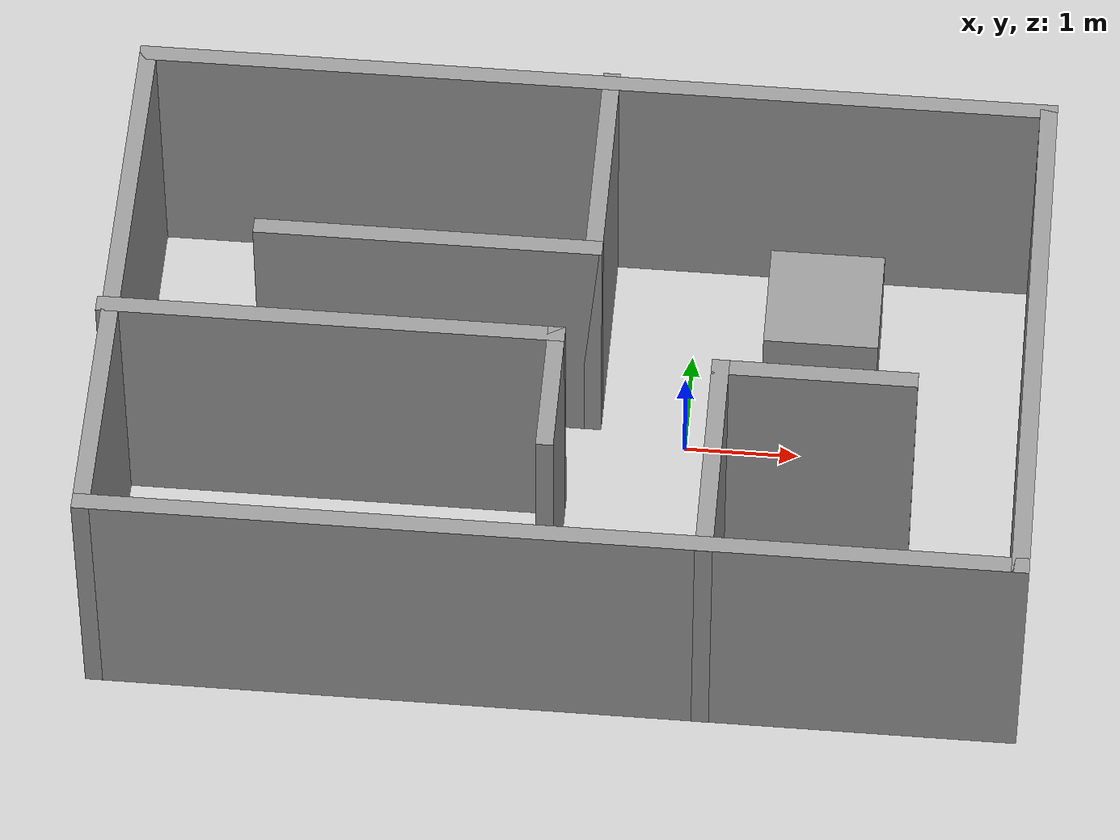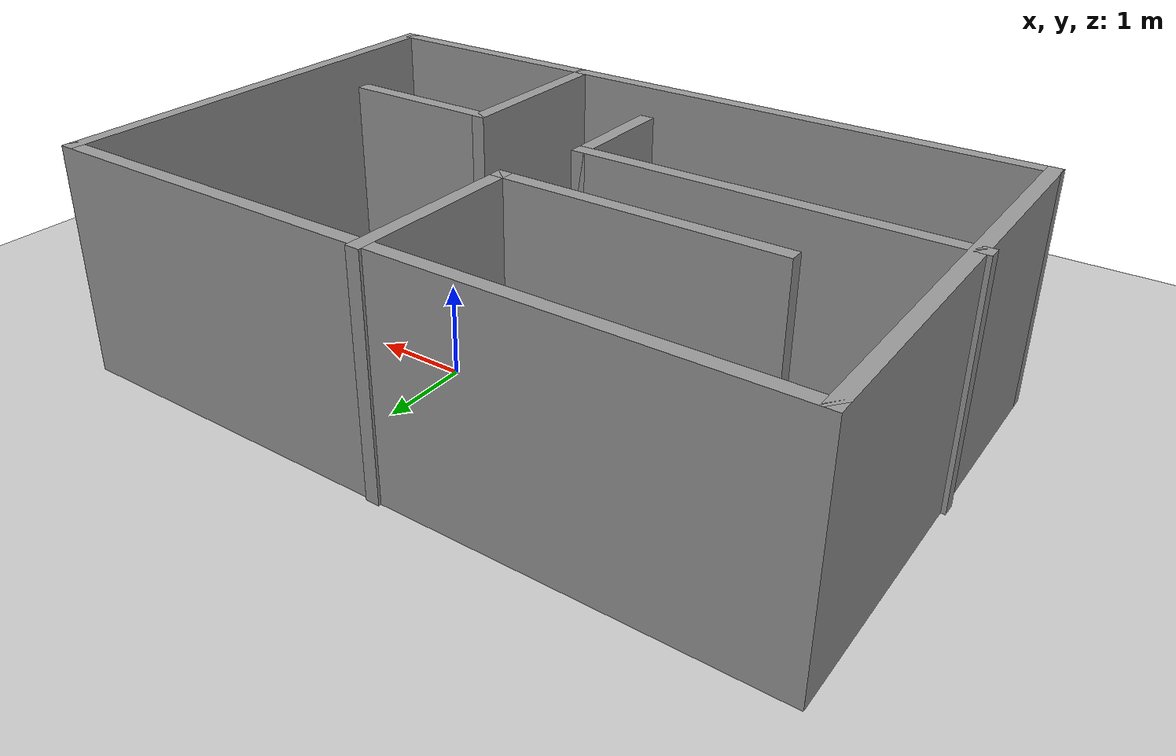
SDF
<sdf version="1.7">
 <world name="default">
  <light name="sun" type="directional">
   <pose>0 0 10 0 -0 0</pose>
   <diffuse>0.8 0.8 0.8 1</diffuse>
   <specular>0.2 0.2 0.2 1</specular>
   <attenuation>
    <range>1000</range>
    <constant>0.9</constant>
    <linear>0.01</linear>
    <quadratic>0.001</quadratic>
   </attenuation>
   <direction>-0.5 0.1 -0.9</direction>
   <spot><inner_angle>0</inner_angle><outer_angle>0</outer_angle><falloff>0</falloff></spot>
  </light>
  <model name="ground_plane">
   <static>1</static>
   <link name="link">
    <collision name="collision">
     <geometry><plane><normal>0 0 1</normal><size>100 100</size></plane></geometry>
     <surface><friction><ode><mu>100</mu><mu2>50</mu2></ode></friction></surface>
    </collision>
    <visual name="visual">
     <cast_shadows>0</cast_shadows>
     <geometry><plane><normal>0 0 1</normal><size>100 100</size></plane></geometry>
     <material>
      <script><uri>file://media/materials/scripts/gazebo.material</uri><name>Gazebo/Grey</name></script>
     </material>
    </visual>
   </link>
  </model>
  <gravity>0 0 -9.8</gravity>
  <magnetic_field>6e-06 2.3e-05 -4.2e-05</magnetic_field>
  <atmosphere type="adiabatic"/>
  <physics type="ode">
   <max_step_size>0.001</max_step_size>
   <real_time_factor>1</real_time_factor>
   <real_time_update_rate>1000</real_time_update_rate>
  </physics>
  <scene><ambient>0.4 0.4 0.4 1</ambient><background>0.7 0.7 0.7 1</background><shadows>1</shadows></scene>
  <audio><device>default</device></audio>
  <spherical_coordinates>
   <surface_model>EARTH_WGS84</surface_model>
   <latitude_deg>0</latitude_deg>
   <longitude_deg>0</longitude_deg>
   <elevation>0</elevation>
   <heading_deg>0</heading_deg>
  </spherical_coordinates>
  <model name="room">
   <pose>-0.966963 -0.366901 0 0 -0 0</pose>
   <link name="Wall_10">
    <collision name="Wall_10_Collision">
     <geometry><box><size>5 0.15 2.5</size></box></geometry>
     <pose>0 0 1.25 0 -0 0</pose>
    </collision>
    <visual name="Wall_10_Visual">
     <pose>0 0 1.25 0 -0 0</pose>
     <geometry><box><size>5 0.15 2.5</size></box></geometry>
     <material>
      <script><uri>file://media/materials/scripts/gazebo.material</uri><name>Gazebo/Grey</name></script>
      <ambient>1 1 1 1</ambient>
     </material>
     <meta><layer>0</layer></meta>
    </visual>
    <pose>3.94781 -0.014413 0 0 -0 -1.5708</pose>
   </link>
   <link name="Wall_11">
    <collision name="Wall_11_Collision">
     <geometry><box><size>8 0.15 2.5</size></box></geometry>
     <pose>0 0 1.25 0 -0 0</pose>
    </collision>
    <visual name="Wall_11_Visual">
     <pose>0 0 1.25 0 -0 0</pose>
     <geometry><box><size>8 0.15 2.5</size></box></geometry>
     <material>
      <script><uri>file://media/materials/scripts/gazebo.material</uri><name>Gazebo/Grey</name></script>
      <ambient>1 1 1 1</ambient>
     </material>
     <meta><layer>0</layer></meta>
    </visual>
    <pose>0.022813 -2.43941 0 0 -0 3.14159</pose>
   </link>
   <link name="Wall_12">
    <collision name="Wall_12_Collision">
     <geometry><box><size>5 0.15 2.5</size></box></geometry>
     <pose>0 0 1.25 0 -0 0</pose>
    </collision>
    <visual name="Wall_12_Visual">
     <pose>0 0 1.25 0 -0 0</pose>
     <geometry><box><size>5 0.15 2.5</size></box></geometry>
     <material>
      <script><uri>file://media/materials/scripts/gazebo.material</uri><name>Gazebo/Grey</name></script>
      <ambient>1 1 1 1</ambient>
     </material>
     <meta><layer>0</layer></meta>
    </visual>
    <pose>-3.90219 -0.014413 0 0 -0 1.5708</pose>
   </link>
   <link name="Wall_14">
    <collision name="Wall_14_Collision">
     <geometry><box><size>2 0.15 2.5</size></box></geometry>
     <pose>0 0 1.25 0 -0 0</pose>
    </collision>
    <visual name="Wall_14_Visual">
     <pose>0 0 1.25 0 -0 0</pose>
     <geometry><box><size>2 0.15 2.5</size></box></geometry>
     <material>
      <script><uri>file://media/materials/scripts/gazebo.material</uri><name>Gazebo/Grey</name></script>
      <ambient>1 1 1 1</ambient>
     </material>
     <meta><layer>0</layer></meta>
    </visual>
    <pose>0.143341 1.516 0 0 -0 -1.5708</pose>
   </link>
   <link name="Wall_15">
    <collision name="Wall_15_Collision">
     <geometry><box><size>3 0.15 2.5</size></box></geometry>
     <pose>0 0 1.25 0 -0 0</pose>
    </collision>
    <visual name="Wall_15_Visual">
     <pose>0 0 1.25 0 -0 0</pose>
     <geometry><box><size>3 0.15 2.5</size></box></geometry>
     <material>
      <script><uri>file://media/materials/scripts/gazebo.material</uri><name>Gazebo/Grey</name></script>
      <ambient>1 1 1 1</ambient>
     </material>
     <meta><layer>0</layer></meta>
    </visual>
    <pose>-1.28166 0.591004 0 0 -0 3.14159</pose>
   </link>
   <link name="Wall_17">
    <collision name="Wall_17_Collision">
     <geometry><box><size>4 0.15 2.5</size></box></geometry>
     <pose>0 0 1.25 0 -0 0</pose>
    </collision>
    <visual name="Wall_17_Visual">
     <pose>0 0 1.25 0 -0 0</pose>
     <geometry><box><size>4 0.15 2.5</size></box></geometry>
     <material>
      <script><uri>file://media/materials/scripts/gazebo.material</uri><name>Gazebo/Grey</name></script>
      <ambient>1 1 1 1</ambient>
     </material>
     <meta><layer>0</layer></meta>
    </visual>
    <pose>-2.02281 -0.357406 0 0 -0 0</pose>
   </link>
   <link name="Wall_18">
    <collision name="Wall_18_Collision">
     <geometry><box><size>1.25 0.15 2.5</size></box></geometry>
     <pose>0 0 1.25 0 -0 0</pose>
    </collision>
    <visual name="Wall_18_Visual">
     <pose>0 0 1.25 0 -0 0</pose>
     <geometry><box><size>1.25 0.15 2.5</size></box></geometry>
     <material>
      <script><uri>file://media/materials/scripts/gazebo.material</uri><name>Gazebo/Grey</name></script>
      <ambient>1 1 1 1</ambient>
     </material>
     <meta><layer>0</layer></meta>
    </visual>
    <pose>-0.097813 -0.907406 0 0 -0 -1.5708</pose>
   </link>
   <link name="Wall_23">
    <collision name="Wall_23_Collision">
     <geometry><box><size>2 0.15 2.5</size></box></geometry>
     <pose>0 0 1.25 0 -0 0</pose>
    </collision>
    <visual name="Wall_23_Visual">
     <pose>0 0 1.25 0 -0 0</pose>
     <geometry><box><size>2 0.15 2.5</size></box></geometry>
     <material>
      <script><uri>file://media/materials/scripts/gazebo.material</uri><name>Gazebo/Grey</name></script>
      <ambient>1 1 1 1</ambient>
     </material>
     <meta><layer>0</layer></meta>
    </visual>
    <pose>1.31441 -1.516 0 0 -0 1.5708</pose>
   </link>
   <link name="Wall_24">
    <collision name="Wall_24_Collision">
     <geometry><box><size>1.75 0.15 2.5</size></box></geometry>
     <pose>0 0 1.25 0 -0 0</pose>
    </collision>
    <visual name="Wall_24_Visual">
     <pose>0 0 1.25 0 -0 0</pose>
     <geometry><box><size>1.75 0.15 2.5</size></box></geometry>
     <material>
      <script><uri>file://media/materials/scripts/gazebo.material</uri><name>Gazebo/Grey</name></script>
      <ambient>1 1 1 1</ambient>
     </material>
     <meta><layer>0</layer></meta>
    </visual>
    <pose>2.11441 -0.591004 0 0 -0 0</pose>
   </link>
   <link name="Wall_9">
    <collision name="Wall_9_Collision">
     <geometry><box><size>8 0.15 2.5</size></box></geometry>
     <pose>0 0 1.25 0 -0 0</pose>
    </collision>
    <visual name="Wall_9_Visual">
     <pose>0 0 1.25 0 -0 0</pose>
     <geometry><box><size>8 0.15 2.5</size></box></geometry>
     <material>
      <script><uri>file://media/materials/scripts/gazebo.material</uri><name>Gazebo/Grey</name></script>
      <ambient>1 1 1 1</ambient>
     </material>
     <meta><layer>0</layer></meta>
    </visual>
    <pose>0.022813 2.41059 0 0 -0 0</pose>
   </link>
   <static>1</static>
  </model>
  <model name="unit_box">
   <pose>1.13891 0.991913 0.499995 0 1e-05 0</pose>
   <link name="link">
    <inertial>
     <mass>1</mass>
     <inertia>
      <ixx>0.166667</ixx>
      <ixy>0</ixy>
      <ixz>0</ixz>
      <iyy>0.166667</iyy>
      <iyz>0</iyz>
      <izz>0.166667</izz>
     </inertia>
    </inertial>
    <collision name="collision"><geometry><box><size>1 1 1</size></box></geometry></collision>
    <visual name="visual">
     <geometry><box><size>1 1 1</size></box></geometry>
     <material>
      <script><name>Gazebo/Grey</name><uri>file://media/materials/scripts/gazebo.material</uri></script>
     </material>
    </visual>
   </link>
  </model>
 </world>
</sdf>
